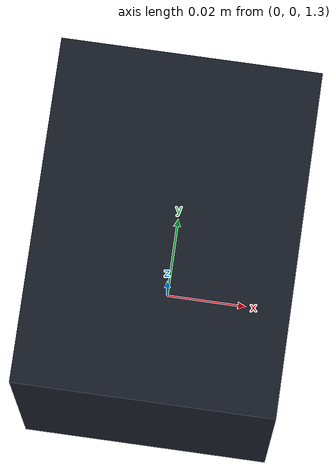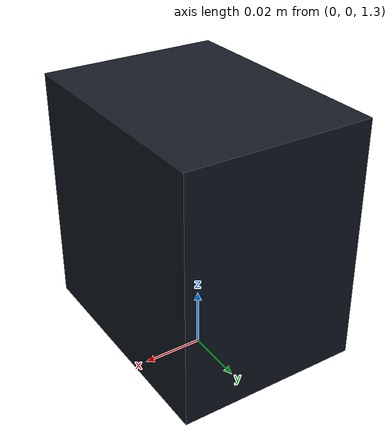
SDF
<?xml version="1.0" ?>
<sdf version="1.6">
  <model name="paper_camera">
    <static>true</static>
    <link name="camera_link">
      <!-- Gazebo cameras look along +X in their local frame.  Pitch +90 deg
           points +X down along world -Z. -->
      <pose>0 0 1.35 0 1.57079632679 0</pose>
      <inertial><mass>0.05</mass><inertia><ixx>0.0001</ixx><iyy>0.0001</iyy><izz>0.0001</izz><ixy>0</ixy><ixz>0</ixz><iyz>0</iyz></inertia></inertial>
      <collision name="collision"><geometry><box><size>0.08 0.08 0.06</size></box></geometry></collision>
      <visual name="visual">
        <geometry><box><size>0.08 0.08 0.06</size></box></geometry>
        <material><ambient>0.04 0.05 0.07 1</ambient><diffuse>0.08 0.10 0.14 1</diffuse></material>
      </visual>
      <sensor name="paper_camera_sensor" type="camera">
        <always_on>true</always_on>
        <update_rate>30.0</update_rate>
        <visualize>true</visualize>
        <camera>
          <horizontal_fov>1.0</horizontal_fov>
          <image><width>800</width><height>600</height><format>R8G8B8</format></image>
          <clip><near>0.05</near><far>5.0</far></clip>
        </camera>
        <plugin name="paper_camera_controller" filename="libgazebo_ros_camera.so">
          <alwaysOn>true</alwaysOn>
          <updateRate>30.0</updateRate>
          <cameraName>paper_camera</cameraName>
          <imageTopicName>image_raw</imageTopicName>
          <cameraInfoTopicName>camera_info</cameraInfoTopicName>
          <frameName>paper_camera_optical_frame</frameName>
          <robotNamespace>/vla</robotNamespace>
        </plugin>
      </sensor>
    </link>
  </model>
</sdf>
